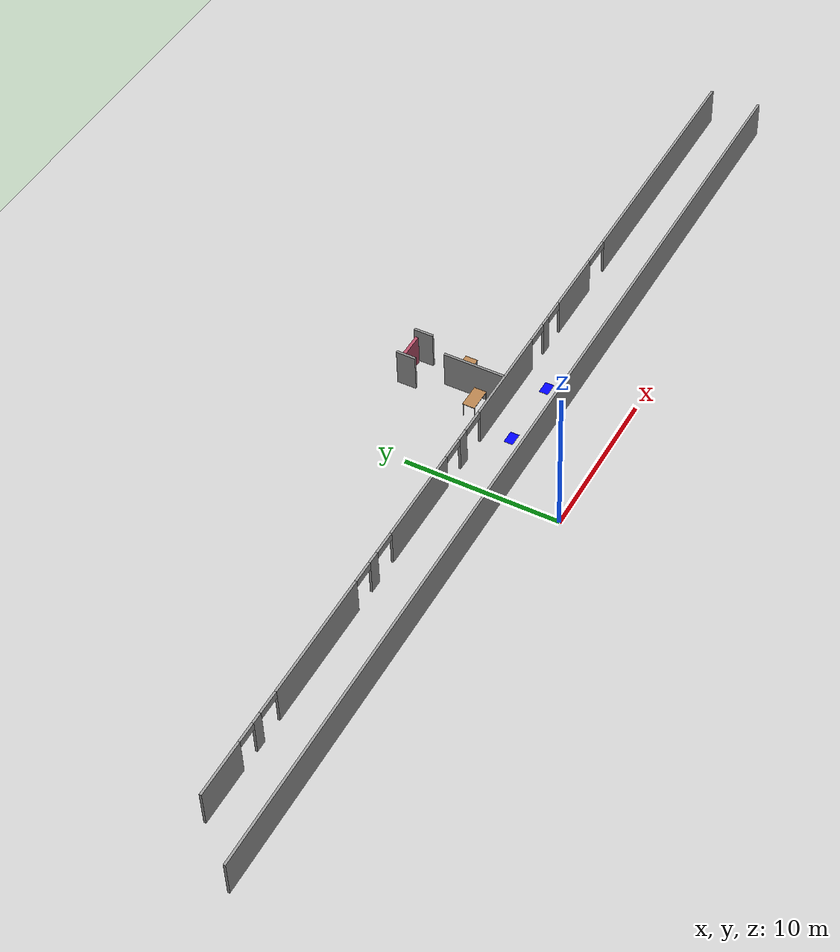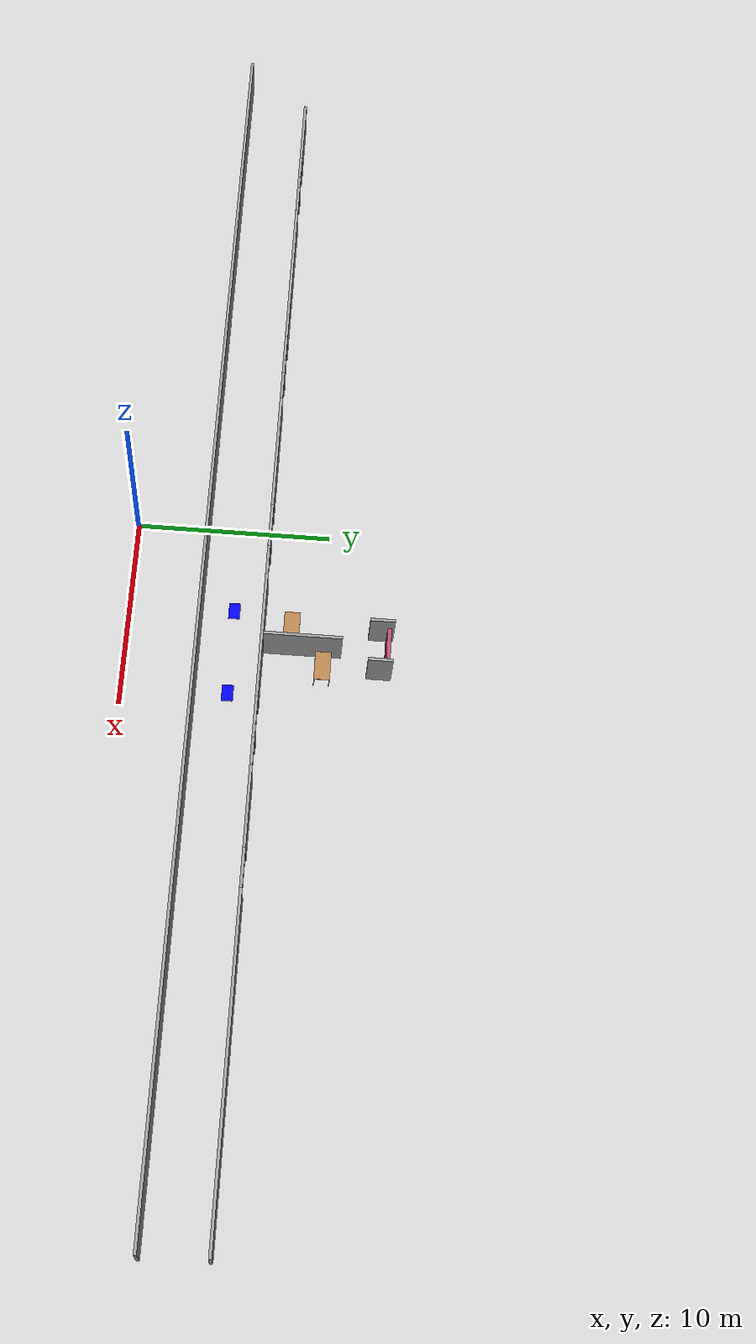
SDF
<sdf version="1.6">
 <world name="default">
  <model name="ground_plane">
   <pose>0 0 0.001 0 -0 0</pose>
   <static>1</static>
   <link name="link">
    <collision name="collision">
     <geometry><plane><normal>0 0 1</normal><size>100 100</size></plane></geometry>
     <surface><friction><ode><mu>100</mu><mu2>50</mu2></ode></friction></surface>
    </collision>
    <visual name="visual">
     <cast_shadows>0</cast_shadows>
     <geometry><plane><normal>0 0 1</normal><size>100 100</size></plane></geometry>
     <material>
      <script><uri>file://media/materials/scripts/gazebo.material</uri><name>Gazebo/Grey</name></script>
     </material>
    </visual>
   </link>
  </model>
  <model name="table_8">
   <static>1</static>
   <link name="link">
    <collision name="surface">
     <pose>0 0 1 0 -0 0</pose>
     <geometry><box><size>1.5 0.8 0.03</size></box></geometry>
     <surface><friction><ode><mu>0.6</mu><mu2>0.6</mu2></ode></friction></surface>
    </collision>
    <visual name="visual1">
     <pose>0 0 1 0 -0 0</pose>
     <geometry><box><size>1.5 0.8 0.03</size></box></geometry>
     <material>
      <script><uri>file://media/materials/scripts/gazebo.material</uri><name>Gazebo/Wood</name></script>
     </material>
    </visual>
    <collision name="front_left_leg">
     <pose>0.68 0.38 0.5 0 -0 0</pose>
     <geometry><cylinder><radius>0.02</radius><length>1</length></cylinder></geometry>
    </collision>
    <visual name="front_left_leg">
     <pose>0.68 0.38 0.5 0 -0 0</pose>
     <geometry><cylinder><radius>0.02</radius><length>1</length></cylinder></geometry>
     <material>
      <script><uri>file://media/materials/scripts/gazebo.material</uri><name>Gazebo/Grey</name></script>
     </material>
    </visual>
    <collision name="front_right_leg">
     <pose>0.68 -0.38 0.5 0 -0 0</pose>
     <geometry><cylinder><radius>0.02</radius><length>1</length></cylinder></geometry>
    </collision>
    <visual name="front_right_leg">
     <pose>0.68 -0.38 0.5 0 -0 0</pose>
     <geometry><cylinder><radius>0.02</radius><length>1</length></cylinder></geometry>
     <material>
      <script><uri>file://media/materials/scripts/gazebo.material</uri><name>Gazebo/Grey</name></script>
     </material>
    </visual>
    <collision name="back_right_leg">
     <pose>-0.68 -0.38 0.5 0 -0 0</pose>
     <geometry><cylinder><radius>0.02</radius><length>1</length></cylinder></geometry>
    </collision>
    <visual name="back_right_leg">
     <pose>-0.68 -0.38 0.5 0 -0 0</pose>
     <geometry><cylinder><radius>0.02</radius><length>1</length></cylinder></geometry>
     <material>
      <script><uri>file://media/materials/scripts/gazebo.material</uri><name>Gazebo/Grey</name></script>
     </material>
    </visual>
    <collision name="back_left_leg">
     <pose>-0.68 0.38 0.5 0 -0 0</pose>
     <geometry><cylinder><radius>0.02</radius><length>1</length></cylinder></geometry>
    </collision>
    <visual name="back_left_leg">
     <pose>-0.68 0.38 0.5 0 -0 0</pose>
     <geometry><cylinder><radius>0.02</radius><length>1</length></cylinder></geometry>
     <material>
      <script><uri>file://media/materials/scripts/gazebo.material</uri><name>Gazebo/Grey</name></script>
     </material>
    </visual>
   </link>
   <pose>5.52089 8.38758 0.001 0 -0 0</pose>
  </model>
  <model name="table_12">
   <static>1</static>
   <link name="link">
    <collision name="surface">
     <pose>0 0 1 0 -0 0</pose>
     <geometry><box><size>1.5 0.8 0.03</size></box></geometry>
     <surface><friction><ode><mu>0.6</mu><mu2>0.6</mu2></ode></friction></surface>
    </collision>
    <visual name="visual1">
     <pose>0 0 1 0 -0 0</pose>
     <geometry><box><size>1.5 0.8 0.03</size></box></geometry>
     <material>
      <script><uri>file://media/materials/scripts/gazebo.material</uri><name>Gazebo/Wood</name></script>
     </material>
    </visual>
    <collision name="front_left_leg">
     <pose>0.68 0.38 0.5 0 -0 0</pose>
     <geometry><cylinder><radius>0.02</radius><length>1</length></cylinder></geometry>
    </collision>
    <visual name="front_left_leg">
     <pose>0.68 0.38 0.5 0 -0 0</pose>
     <geometry><cylinder><radius>0.02</radius><length>1</length></cylinder></geometry>
     <material>
      <script><uri>file://media/materials/scripts/gazebo.material</uri><name>Gazebo/Grey</name></script>
     </material>
    </visual>
    <collision name="front_right_leg">
     <pose>0.68 -0.38 0.5 0 -0 0</pose>
     <geometry><cylinder><radius>0.02</radius><length>1</length></cylinder></geometry>
    </collision>
    <visual name="front_right_leg">
     <pose>0.68 -0.38 0.5 0 -0 0</pose>
     <geometry><cylinder><radius>0.02</radius><length>1</length></cylinder></geometry>
     <material>
      <script><uri>file://media/materials/scripts/gazebo.material</uri><name>Gazebo/Grey</name></script>
     </material>
    </visual>
    <collision name="back_right_leg">
     <pose>-0.68 -0.38 0.5 0 -0 0</pose>
     <geometry><cylinder><radius>0.02</radius><length>1</length></cylinder></geometry>
    </collision>
    <visual name="back_right_leg">
     <pose>-0.68 -0.38 0.5 0 -0 0</pose>
     <geometry><cylinder><radius>0.02</radius><length>1</length></cylinder></geometry>
     <material>
      <script><uri>file://media/materials/scripts/gazebo.material</uri><name>Gazebo/Grey</name></script>
     </material>
    </visual>
    <collision name="back_left_leg">
     <pose>-0.68 0.38 0.5 0 -0 0</pose>
     <geometry><cylinder><radius>0.02</radius><length>1</length></cylinder></geometry>
    </collision>
    <visual name="back_left_leg">
     <pose>-0.68 0.38 0.5 0 -0 0</pose>
     <geometry><cylinder><radius>0.02</radius><length>1</length></cylinder></geometry>
     <material>
      <script><uri>file://media/materials/scripts/gazebo.material</uri><name>Gazebo/Grey</name></script>
     </material>
    </visual>
   </link>
   <pose>7.58214 10.0723 0.001 0 -0 0</pose>
  </model>
  <model name="intersection_54">
   <link name="link">
    <pose>0 0 0.001 0 -0 0</pose>
    <inertial>
     <mass>0.0352517</mass>
     <inertia>
      <ixx>0.000997067</ixx>
      <ixy>0</ixy>
      <ixz>0</ixz>
      <iyy>0.00220147</iyy>
      <iyz>0</iyz>
      <izz>0.0031692</izz>
     </inertia>
     <pose>0 0 0.001 0 -0 0</pose>
    </inertial>
    <visual name="visual">
     <geometry><box><size>0.862743 0.578289 1e-06</size></box></geometry>
     <material>
      <script><name>Gazebo/Grey</name><uri>file://media/materials/scripts/gazebo.material</uri></script>
      <ambient>0 0 1 1</ambient>
      <diffuse>0 0 1 1</diffuse>
      <specular>0 0 1 1</specular>
      <emissive>0 0 1 1</emissive>
      <shader type="vertex"><normal_map>__default__</normal_map></shader>
     </material>
     <pose>0 0 0.001 0 -0 0</pose>
    </visual>
    <collision name="collision">
     <pose>0 0 0.001 0 -0 0</pose>
     <geometry><box><size>0.862743 0.578289 0.000477</size></box></geometry>
     <surface>
      <friction>
       <ode><mu>1</mu><mu2>1</mu2><fdir1>0 0 0</fdir1><slip1>0</slip1><slip2>0</slip2></ode>
       <torsional>
        <coefficient>1</coefficient>
        <patch_radius>0</patch_radius>
        <surface_radius>0</surface_radius>
        <use_patch_radius>1</use_patch_radius>
        <ode><slip>0</slip></ode>
       </torsional>
      </friction>
      <bounce><restitution_coefficient>0</restitution_coefficient><threshold>1e+06</threshold></bounce>
      <contact>
       <collide_without_contact>0</collide_without_contact>
       <collide_without_contact_bitmask>1</collide_without_contact_bitmask>
       <collide_bitmask>1</collide_bitmask>
       <ode>
        <soft_cfm>0</soft_cfm>
        <soft_erp>0.2</soft_erp>
        <kp>1e+13</kp>
        <kd>1</kd>
        <max_vel>0.01</max_vel>
        <min_depth>0</min_depth>
       </ode>
       <bullet>
        <split_impulse>1</split_impulse>
        <split_impulse_penetration_threshold>-0.01</split_impulse_penetration_threshold>
        <soft_cfm>0</soft_cfm>
        <soft_erp>0.2</soft_erp>
        <kp>1e+13</kp>
        <kd>1</kd>
       </bullet>
      </contact>
     </surface>
    </collision>
   </link>
   <static>1</static>
   <pose>4.48738 5.38831 0 0 -0 0</pose>
  </model>
  <model name="intersection_55">
   <link name="link">
    <pose>0 0 0.001 0 -0 0</pose>
    <inertial>
     <mass>0.0352517</mass>
     <inertia>
      <ixx>0.000997067</ixx>
      <ixy>0</ixy>
      <ixz>0</ixz>
      <iyy>0.00220147</iyy>
      <iyz>0</iyz>
      <izz>0.0031692</izz>
     </inertia>
     <pose>0 0 0.001 0 -0 0</pose>
    </inertial>
    <visual name="visual">
     <geometry><box><size>0.862743 0.578289 1e-06</size></box></geometry>
     <material>
      <script><name>Gazebo/Grey</name><uri>file://media/materials/scripts/gazebo.material</uri></script>
      <ambient>0 0 1 1</ambient>
      <diffuse>0 0 1 1</diffuse>
      <specular>0 0 1 1</specular>
      <emissive>0 0 1 1</emissive>
      <shader type="vertex"><normal_map>__default__</normal_map></shader>
     </material>
     <pose>0 0 0.001 0 -0 0</pose>
    </visual>
    <collision name="collision">
     <pose>0 0 0.001 0 -0 0</pose>
     <geometry><box><size>0.862743 0.578289 0.000477</size></box></geometry>
     <surface>
      <friction>
       <ode><mu>1</mu><mu2>1</mu2><fdir1>0 0 0</fdir1><slip1>0</slip1><slip2>0</slip2></ode>
       <torsional>
        <coefficient>1</coefficient>
        <patch_radius>0</patch_radius>
        <surface_radius>0</surface_radius>
        <use_patch_radius>1</use_patch_radius>
        <ode><slip>0</slip></ode>
       </torsional>
      </friction>
      <bounce><restitution_coefficient>0</restitution_coefficient><threshold>1e+06</threshold></bounce>
      <contact>
       <collide_without_contact>0</collide_without_contact>
       <collide_without_contact_bitmask>1</collide_without_contact_bitmask>
       <collide_bitmask>1</collide_bitmask>
       <ode>
        <soft_cfm>0</soft_cfm>
        <soft_erp>0.2</soft_erp>
        <kp>1e+13</kp>
        <kd>1</kd>
        <max_vel>0.01</max_vel>
        <min_depth>0</min_depth>
       </ode>
       <bullet>
        <split_impulse>1</split_impulse>
        <split_impulse_penetration_threshold>-0.01</split_impulse_penetration_threshold>
        <soft_cfm>0</soft_cfm>
        <soft_erp>0.2</soft_erp>
        <kp>1e+13</kp>
        <kd>1</kd>
       </bullet>
      </contact>
     </surface>
    </collision>
   </link>
   <static>1</static>
   <pose>9.01358 5.40163 0 0 -0 0</pose>
  </model>
  <model name="doorOutside_5">
   <link name="link">
    <pose>0.155539 -0.366282 0.216958 0 -0 0</pose>
    <inertial>
     <mass>2.13199</mass>
     <inertia>
      <ixx>0.452656</ixx>
      <ixy>0</ixy>
      <ixz>0</ixz>
      <iyy>0.796738</iyy>
      <iyz>0</iyz>
      <izz>0.699414</izz>
     </inertia>
    </inertial>
    <visual name="visual">
     <geometry><box><size>1.71368 0.198843 2.05986</size></box></geometry>
     <material>
      <script><name>Gazebo/Grey</name><uri>file://media/materials/scripts/gazebo.material</uri></script>
      <ambient>0.7 0.3 0.4 1</ambient>
      <diffuse>0.7 0.7 0.7 1</diffuse>
      <specular>0.01 0.01 0.01 1</specular>
      <emissive>0 0 0 1</emissive>
      <shader type="vertex"><normal_map>__default__</normal_map></shader>
      <lighting>0</lighting>
     </material>
    </visual>
    <collision name="collision">
     <geometry><box><size>1.71368 0.198843 2.05986</size></box></geometry>
     <surface>
      <friction>
       <ode><mu>1</mu><mu2>1</mu2><fdir1>0 0 0</fdir1><slip1>0</slip1><slip2>0</slip2></ode>
       <torsional>
        <coefficient>1</coefficient>
        <patch_radius>0</patch_radius>
        <surface_radius>0</surface_radius>
        <use_patch_radius>1</use_patch_radius>
        <ode><slip>0</slip></ode>
       </torsional>
      </friction>
      <bounce><restitution_coefficient>0</restitution_coefficient><threshold>1e+06</threshold></bounce>
      <contact>
       <collide_without_contact>0</collide_without_contact>
       <collide_without_contact_bitmask>1</collide_without_contact_bitmask>
       <collide_bitmask>1</collide_bitmask>
       <ode>
        <soft_cfm>0</soft_cfm>
        <soft_erp>0.2</soft_erp>
        <kp>1e+13</kp>
        <kd>1</kd>
        <max_vel>0.01</max_vel>
        <min_depth>0</min_depth>
       </ode>
       <bullet>
        <split_impulse>1</split_impulse>
        <split_impulse_penetration_threshold>-0.01</split_impulse_penetration_threshold>
        <soft_cfm>0</soft_cfm>
        <soft_erp>0.2</soft_erp>
        <kp>1e+13</kp>
        <kd>1</kd>
       </bullet>
      </contact>
     </surface>
    </collision>
   </link>
   <static>0</static>
   <pose>6.45244 13.66 0.812972 0 -0 0.00019</pose>
  </model>
  <model name="Se1_cut">
   <pose>3.62364 13.9276 0 0 -0 0</pose>
   <link name="Wall_10">
    <pose>1.36862 -6.975 0 0 -0 0</pose>
    <visual name="Wall_10_Visual_0">
     <pose>-29.3076 0 1.25 0 -0 0</pose>
     <geometry><box><size>3.63484 0.15 2.5</size></box></geometry>
     <material>
      <script><uri>file://media/materials/scripts/gazebo.material</uri><name>Gazebo/Grey</name></script>
      <ambient>1 1 1 1</ambient>
     </material>
    </visual>
    <collision name="Wall_10_Collision_0">
     <geometry><box><size>3.63484 0.15 2.5</size></box></geometry>
     <pose>-29.3076 0 1.25 0 -0 0</pose>
    </collision>
    <visual name="Wall_10_Visual_1">
     <pose>-25.817 0 1.25 0 -0 0</pose>
     <geometry><box><size>0.713595 0.15 2.5</size></box></geometry>
     <material>
      <script><uri>file://media/materials/scripts/gazebo.material</uri><name>Gazebo/Grey</name></script>
      <ambient>1 1 1 1</ambient>
     </material>
    </visual>
    <collision name="Wall_10_Collision_1">
     <geometry><box><size>0.713595 0.15 2.5</size></box></geometry>
     <pose>-25.817 0 1.25 0 -0 0</pose>
    </collision>
    <visual name="Wall_10_Visual_2">
     <pose>-19.8 0 1.25 0 -0 0</pose>
     <geometry><box><size>8.27129 0.15 2.5</size></box></geometry>
     <material>
      <script><uri>file://media/materials/scripts/gazebo.material</uri><name>Gazebo/Grey</name></script>
      <ambient>1 1 1 1</ambient>
     </material>
    </visual>
    <collision name="Wall_10_Collision_2">
     <geometry><box><size>8.27129 0.15 2.5</size></box></geometry>
     <pose>-19.8 0 1.25 0 -0 0</pose>
    </collision>
    <visual name="Wall_10_Visual_3">
     <pose>-13.8092 0 1.25 0 -0 0</pose>
     <geometry><box><size>0.8001 0.15 2.5</size></box></geometry>
     <material>
      <script><uri>file://media/materials/scripts/gazebo.material</uri><name>Gazebo/Grey</name></script>
      <ambient>1 1 1 1</ambient>
     </material>
    </visual>
    <collision name="Wall_10_Collision_3">
     <geometry><box><size>0.8001 0.15 2.5</size></box></geometry>
     <pose>-13.8092 0 1.25 0 -0 0</pose>
    </collision>
    <visual name="Wall_10_Visual_4">
     <pose>-8.68578 0 1.25 0 -0 0</pose>
     <geometry><box><size>6.35145 0.15 2.5</size></box></geometry>
     <material>
      <script><uri>file://media/materials/scripts/gazebo.material</uri><name>Gazebo/Grey</name></script>
      <ambient>1 1 1 1</ambient>
     </material>
    </visual>
    <collision name="Wall_10_Collision_4">
     <geometry><box><size>6.35145 0.15 2.5</size></box></geometry>
     <pose>-8.68578 0 1.25 0 -0 0</pose>
    </collision>
    <visual name="Wall_10_Visual_5">
     <pose>-3.58549 0 1.25 0 -0 0</pose>
     <geometry><box><size>0.8001 0.15 2.5</size></box></geometry>
     <material>
      <script><uri>file://media/materials/scripts/gazebo.material</uri><name>Gazebo/Grey</name></script>
      <ambient>1 1 1 1</ambient>
     </material>
    </visual>
    <collision name="Wall_10_Collision_5">
     <geometry><box><size>0.8001 0.15 2.5</size></box></geometry>
     <pose>-3.58549 0 1.25 0 -0 0</pose>
    </collision>
    <visual name="Wall_10_Visual_6">
     <pose>1.72877 0 1.25 0 -0 0</pose>
     <geometry><box><size>6.64058 0.15 2.5</size></box></geometry>
     <material>
      <script><uri>file://media/materials/scripts/gazebo.material</uri><name>Gazebo/Grey</name></script>
      <ambient>1 1 1 1</ambient>
     </material>
    </visual>
    <collision name="Wall_10_Collision_6">
     <geometry><box><size>6.64058 0.15 2.5</size></box></geometry>
     <pose>1.72877 0 1.25 0 -0 0</pose>
    </collision>
    <visual name="Wall_10_Visual_7">
     <pose>6.82907 0 1.25 0 -0 0</pose>
     <geometry><box><size>0.696012 0.15 2.5</size></box></geometry>
     <material>
      <script><uri>file://media/materials/scripts/gazebo.material</uri><name>Gazebo/Grey</name></script>
      <ambient>1 1 1 1</ambient>
     </material>
    </visual>
    <collision name="Wall_10_Collision_7">
     <geometry><box><size>0.696012 0.15 2.5</size></box></geometry>
     <pose>6.82907 0 1.25 0 -0 0</pose>
    </collision>
    <visual name="Wall_10_Visual_8">
     <pose>10.6539 0 1.25 0 -0 0</pose>
     <geometry><box><size>4.13586 0.15 2.5</size></box></geometry>
     <material>
      <script><uri>file://media/materials/scripts/gazebo.material</uri><name>Gazebo/Grey</name></script>
      <ambient>1 1 1 1</ambient>
     </material>
    </visual>
    <collision name="Wall_10_Collision_8">
     <geometry><box><size>4.13586 0.15 2.5</size></box></geometry>
     <pose>10.6539 0 1.25 0 -0 0</pose>
    </collision>
    <visual name="Wall_10_Visual_9">
     <pose>22.8921 0 1.25 0 -0 0</pose>
     <geometry><box><size>16.4658 0.15 2.5</size></box></geometry>
     <material>
      <script><uri>file://media/materials/scripts/gazebo.material</uri><name>Gazebo/Grey</name></script>
      <ambient>1 1 1 1</ambient>
     </material>
    </visual>
    <collision name="Wall_10_Collision_9">
     <geometry><box><size>16.4658 0.15 2.5</size></box></geometry>
     <pose>22.8921 0 1.25 0 -0 0</pose>
    </collision>
    <visual name="Wall_10_Visual_10">
     <pose>-26.832 0 2.25 0 -0 0</pose>
     <geometry><box><size>1.31635 0.15 0.5</size></box></geometry>
     <material>
      <script><uri>file://media/materials/scripts/gazebo.material</uri><name>Gazebo/Grey</name></script>
      <ambient>1 1 1 1</ambient>
     </material>
    </visual>
    <collision name="Wall_10_Collision_10">
     <geometry><box><size>1.31635 0.15 0.5</size></box></geometry>
     <pose>-26.832 0 2.25 0 -0 0</pose>
    </collision>
    <visual name="Wall_10_Visual_11">
     <pose>-24.6979 0 2.25 0 -0 0</pose>
     <geometry><box><size>1.52453 0.15 0.5</size></box></geometry>
     <material>
      <script><uri>file://media/materials/scripts/gazebo.material</uri><name>Gazebo/Grey</name></script>
      <ambient>1 1 1 1</ambient>
     </material>
    </visual>
    <collision name="Wall_10_Collision_11">
     <geometry><box><size>1.52453 0.15 0.5</size></box></geometry>
     <pose>-24.6979 0 2.25 0 -0 0</pose>
    </collision>
    <visual name="Wall_10_Visual_12">
     <pose>-14.9368 0 2.25 0 -0 0</pose>
     <geometry><box><size>1.45514 0.15 0.5</size></box></geometry>
     <material>
      <script><uri>file://media/materials/scripts/gazebo.material</uri><name>Gazebo/Grey</name></script>
      <ambient>1 1 1 1</ambient>
     </material>
    </visual>
    <collision name="Wall_10_Collision_12">
     <geometry><box><size>1.45514 0.15 0.5</size></box></geometry>
     <pose>-14.9368 0 2.25 0 -0 0</pose>
    </collision>
    <visual name="Wall_10_Visual_13">
     <pose>-12.6353 0 2.25 0 -0 0</pose>
     <geometry><box><size>1.54766 0.15 0.5</size></box></geometry>
     <material>
      <script><uri>file://media/materials/scripts/gazebo.material</uri><name>Gazebo/Grey</name></script>
      <ambient>1 1 1 1</ambient>
     </material>
    </visual>
    <collision name="Wall_10_Collision_13">
     <geometry><box><size>1.54766 0.15 0.5</size></box></geometry>
     <pose>-12.6353 0 2.25 0 -0 0</pose>
    </collision>
    <visual name="Wall_10_Visual_14">
     <pose>-4.7478 0 2.25 0 -0 0</pose>
     <geometry><box><size>1.52453 0.15 0.5</size></box></geometry>
     <material>
      <script><uri>file://media/materials/scripts/gazebo.material</uri><name>Gazebo/Grey</name></script>
      <ambient>1 1 1 1</ambient>
     </material>
    </visual>
    <collision name="Wall_10_Collision_14">
     <geometry><box><size>1.52453 0.15 0.5</size></box></geometry>
     <pose>-4.7478 0 2.25 0 -0 0</pose>
    </collision>
    <visual name="Wall_10_Visual_15">
     <pose>-2.38848 0 2.25 0 -0 0</pose>
     <geometry><box><size>1.59392 0.15 0.5</size></box></geometry>
     <material>
      <script><uri>file://media/materials/scripts/gazebo.material</uri><name>Gazebo/Grey</name></script>
      <ambient>1 1 1 1</ambient>
     </material>
    </visual>
    <collision name="Wall_10_Collision_15">
     <geometry><box><size>1.59392 0.15 0.5</size></box></geometry>
     <pose>-2.38848 0 2.25 0 -0 0</pose>
    </collision>
    <visual name="Wall_10_Visual_16">
     <pose>5.76506 0 2.25 0 -0 0</pose>
     <geometry><box><size>1.432 0.15 0.5</size></box></geometry>
     <material>
      <script><uri>file://media/materials/scripts/gazebo.material</uri><name>Gazebo/Grey</name></script>
      <ambient>1 1 1 1</ambient>
     </material>
    </visual>
    <collision name="Wall_10_Collision_16">
     <geometry><box><size>1.432 0.15 0.5</size></box></geometry>
     <pose>5.76506 0 2.25 0 -0 0</pose>
    </collision>
    <visual name="Wall_10_Visual_17">
     <pose>7.88151 0 2.25 0 -0 0</pose>
     <geometry><box><size>1.40887 0.15 0.5</size></box></geometry>
     <material>
      <script><uri>file://media/materials/scripts/gazebo.material</uri><name>Gazebo/Grey</name></script>
      <ambient>1 1 1 1</ambient>
     </material>
    </visual>
    <collision name="Wall_10_Collision_17">
     <geometry><box><size>1.40887 0.15 0.5</size></box></geometry>
     <pose>7.88151 0 2.25 0 -0 0</pose>
    </collision>
    <visual name="Wall_10_Visual_18">
     <pose>13.6905 0 2.25 0 -0 0</pose>
     <geometry><box><size>1.93741 0.15 0.5</size></box></geometry>
     <material>
      <script><uri>file://media/materials/scripts/gazebo.material</uri><name>Gazebo/Grey</name></script>
      <ambient>1 1 1 1</ambient>
     </material>
    </visual>
    <collision name="Wall_10_Collision_18">
     <geometry><box><size>1.93741 0.15 0.5</size></box></geometry>
     <pose>13.6905 0 2.25 0 -0 0</pose>
    </collision>
   </link>
   <link name="Wall_3">
    <collision name="Wall_3_Collision">
     <geometry><box><size>65.25 0.15 2.5</size></box></geometry>
     <pose>0 0 1.25 0 -0 0</pose>
    </collision>
    <visual name="Wall_3_Visual">
     <pose>0 0 1.25 0 -0 0</pose>
     <geometry><box><size>65.25 0.15 2.5</size></box></geometry>
     <material>
      <script><uri>file://media/materials/scripts/gazebo.material</uri><name>Gazebo/Grey</name></script>
      <ambient>1 1 1 1</ambient>
     </material>
    </visual>
    <pose>-0.031375 -10.225 0 0 -0 0</pose>
   </link>
   <link name="Wall_37">
    <collision name="Wall_37_Collision">
     <geometry><box><size>1.25 0.15 2.5</size></box></geometry>
     <pose>0 0 1.25 0 -0 0</pose>
    </collision>
    <visual name="Wall_37_Visual">
     <pose>0 0 1.25 0 -0 0</pose>
     <geometry><box><size>1.25 0.15 2.5</size></box></geometry>
     <material>
      <script><uri>file://media/materials/scripts/gazebo.material</uri><name>Gazebo/Grey</name></script>
      <ambient>1 1 1 1</ambient>
     </material>
    </visual>
    <pose>1.889 -0.998521 0 0 0 -1.5708</pose>
   </link>
   <link name="Wall_39">
    <collision name="Wall_39_Collision">
     <geometry><box><size>1.25 0.15 2.5</size></box></geometry>
     <pose>0 0 1.25 0 -0 0</pose>
    </collision>
    <visual name="Wall_39_Visual">
     <pose>0 0 1.25 0 -0 0</pose>
     <geometry><box><size>1.25 0.15 2.5</size></box></geometry>
     <material>
      <script><uri>file://media/materials/scripts/gazebo.material</uri><name>Gazebo/Grey</name></script>
      <ambient>1 1 1 1</ambient>
     </material>
    </visual>
    <pose>4.019 -1.00852 0 0 0 -1.5708</pose>
   </link>
   <link name="Wall_97">
    <collision name="Wall_97_Collision">
     <geometry><box><size>4 0.15 2.5</size></box></geometry>
     <pose>0 0 1.25 0 -0 0</pose>
    </collision>
    <visual name="Wall_97_Visual">
     <pose>0 0 1.25 0 -0 0</pose>
     <geometry><box><size>4 0.15 2.5</size></box></geometry>
     <material>
      <script><uri>file://media/materials/scripts/gazebo.material</uri><name>Gazebo/Grey</name></script>
      <ambient>1 1 1 1</ambient>
     </material>
    </visual>
    <pose>2.99871 -4.95749 0 0 0 -1.5708</pose>
   </link>
   <static>1</static>
  </model>
 </world>
</sdf>
